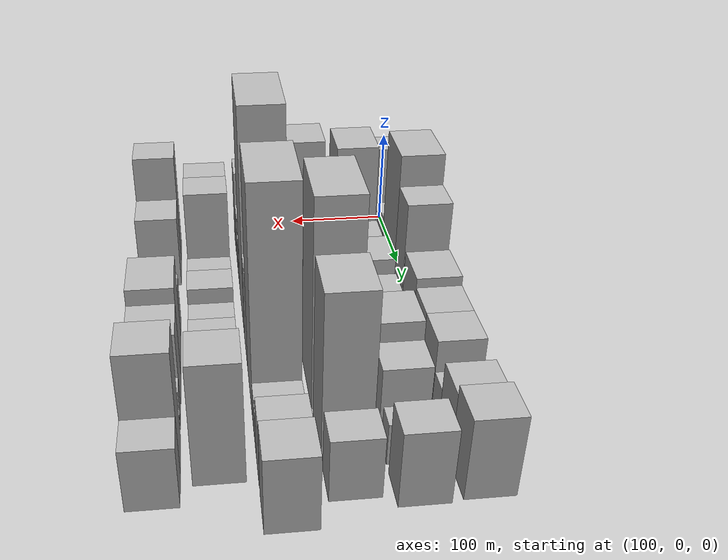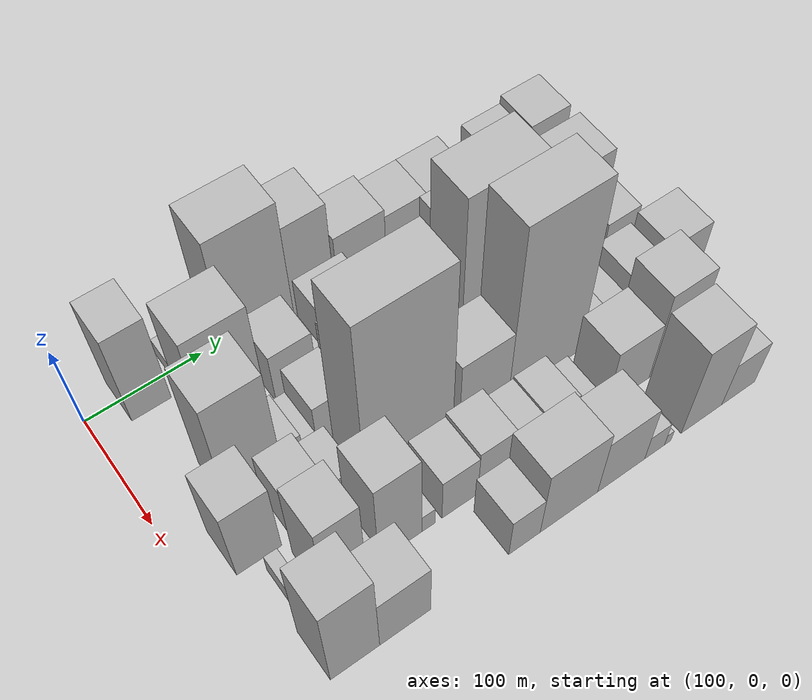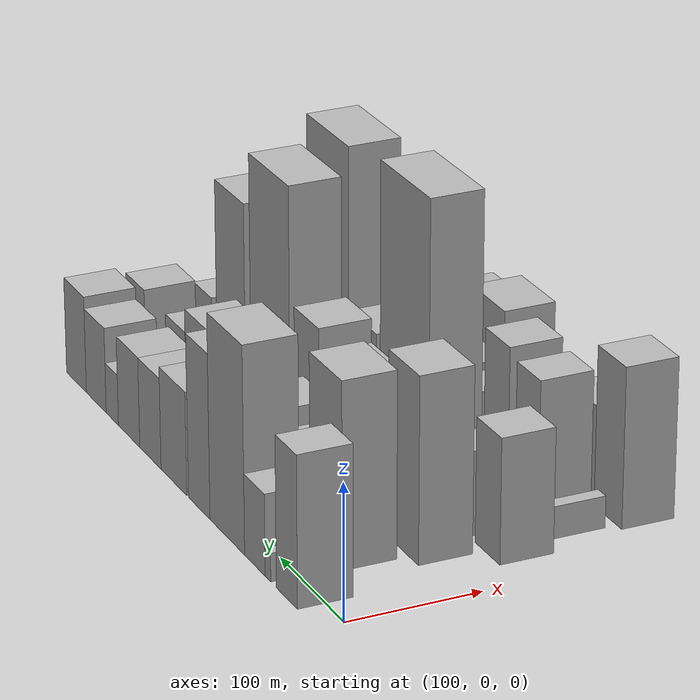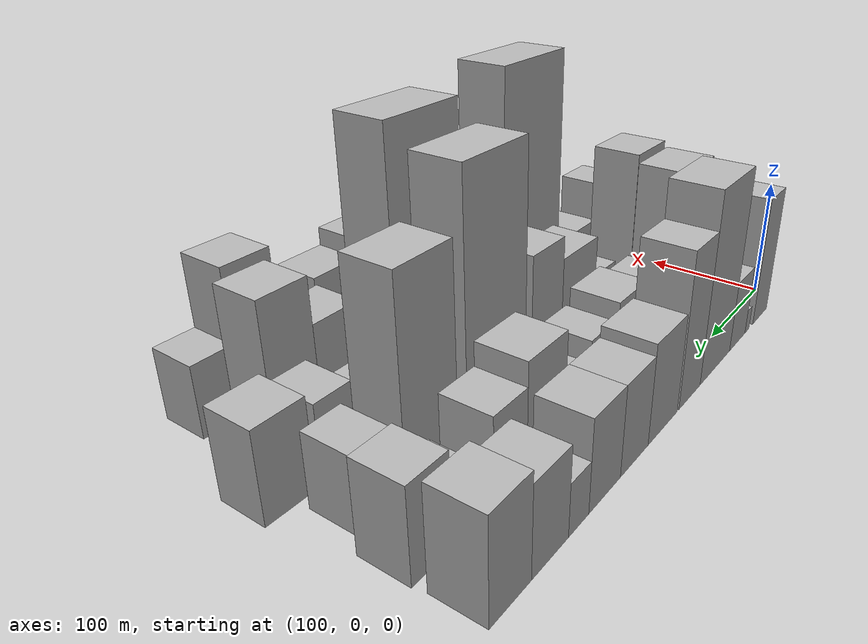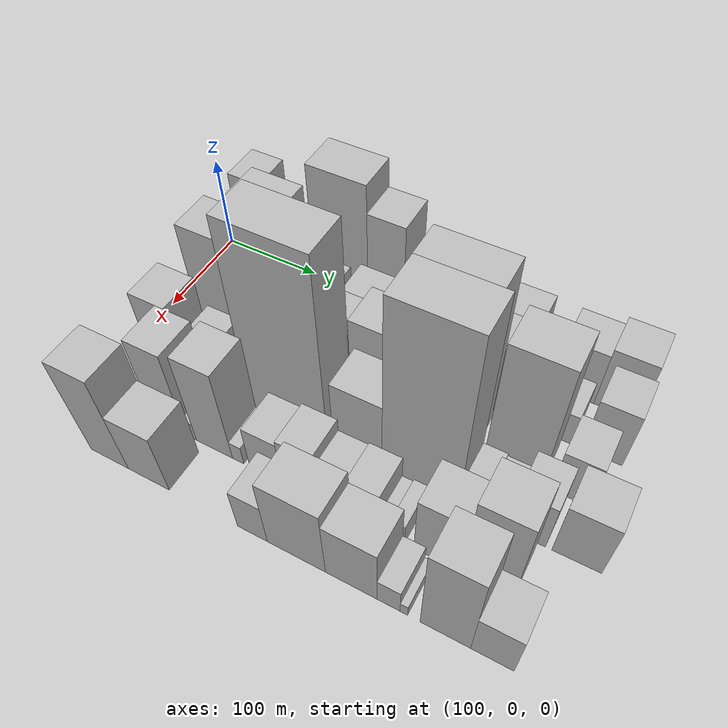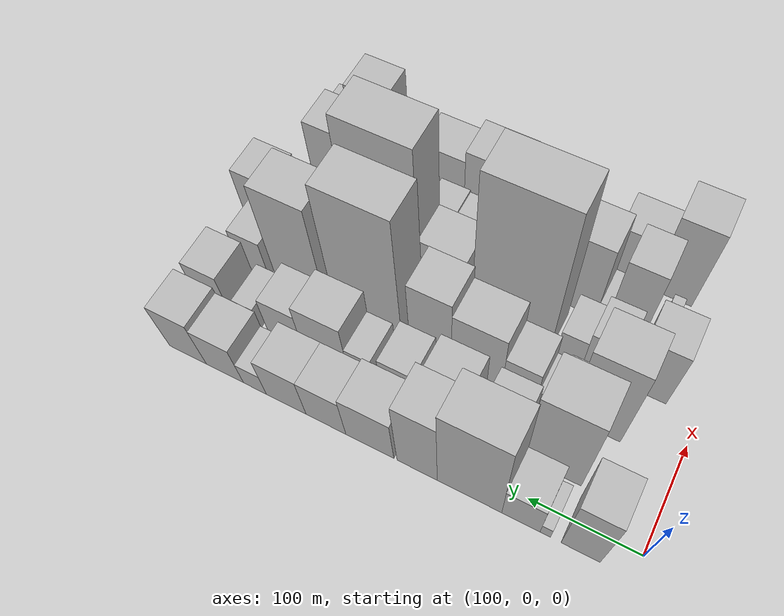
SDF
<sdf version="1.6">
 <world name="default">
  <model name="building_23">
   <static>1</static>
   <pose>100.0000 45.3945 0 0.000000 0.000000 0.000000</pose>
   <link name="link">
    <pose>0 0 55.50 0 0 0</pose>
    <collision name="collision"><geometry><box><size>40.0000 33.4134 111.0000</size></box></geometry></collision>
    <visual name="visual">
     <cast_shadows>0</cast_shadows>
     <geometry><box><size>40.0000 33.4134 111.0000</size></box></geometry>
     <material>
      <script>
       <uri>model://HANNAS_wall/materials/scripts</uri>
       <uri>model://HANNAS_wall/materials/textures</uri>
       <name>vrc/HANNAS_wall</name>
      </script>
     </material>
    </visual>
   </link>
  </model>
  <model name="building_24">
   <static>1</static>
   <pose>100.0000 75.6830 0 0.000000 0.000000 0.000000</pose>
   <link name="link">
    <pose>0 0 10.50 0 0 0</pose>
    <collision name="collision"><geometry><box><size>40.0000 9.1636 21.0000</size></box></geometry></collision>
    <visual name="visual">
     <cast_shadows>0</cast_shadows>
     <geometry><box><size>40.0000 9.1636 21.0000</size></box></geometry>
     <material>
      <script>
       <uri>model://HANNAS_wall/materials/scripts</uri>
       <uri>model://HANNAS_wall/materials/textures</uri>
       <name>vrc/HANNAS_wall</name>
      </script>
     </material>
    </visual>
   </link>
  </model>
  <model name="building_25">
   <static>1</static>
   <pose>100.0000 97.0771 0 0.000000 0.000000 0.000000</pose>
   <link name="link">
    <pose>0 0 30.00 0 0 0</pose>
    <collision name="collision"><geometry><box><size>40.0000 33.6245 60.0000</size></box></geometry></collision>
    <visual name="visual">
     <cast_shadows>0</cast_shadows>
     <geometry><box><size>40.0000 33.6245 60.0000</size></box></geometry>
     <material>
      <script>
       <uri>model://HANNAS_wall/materials/scripts</uri>
       <uri>model://HANNAS_wall/materials/textures</uri>
       <name>vrc/HANNAS_wall</name>
      </script>
     </material>
    </visual>
   </link>
  </model>
  <model name="building_26">
   <static>1</static>
   <pose>100.0000 142.9724 0 0.000000 0.000000 0.000000</pose>
   <link name="link">
    <pose>0 0 76.50 0 0 0</pose>
    <collision name="collision"><geometry><box><size>40.0000 58.1661 153.0000</size></box></geometry></collision>
    <visual name="visual">
     <cast_shadows>0</cast_shadows>
     <geometry><box><size>40.0000 58.1661 153.0000</size></box></geometry>
     <material>
      <script>
       <uri>model://HANNAS_wall/materials/scripts</uri>
       <uri>model://HANNAS_wall/materials/textures</uri>
       <name>vrc/HANNAS_wall</name>
      </script>
     </material>
    </visual>
   </link>
  </model>
  <model name="building_27">
   <static>1</static>
   <pose>100.0000 190.6876 0 0.000000 0.000000 0.000000</pose>
   <link name="link">
    <pose>0 0 61.50 0 0 0</pose>
    <collision name="collision"><geometry><box><size>40.0000 37.2642 123.0000</size></box></geometry></collision>
    <visual name="visual">
     <cast_shadows>0</cast_shadows>
     <geometry><box><size>40.0000 37.2642 123.0000</size></box></geometry>
     <material>
      <script>
       <uri>model://HANNAS_wall/materials/scripts</uri>
       <uri>model://HANNAS_wall/materials/textures</uri>
       <name>vrc/HANNAS_wall</name>
      </script>
     </material>
    </visual>
   </link>
  </model>
  <model name="building_28">
   <static>1</static>
   <pose>100.0000 235.1415 0 0.000000 0.000000 0.000000</pose>
   <link name="link">
    <pose>0 0 39.00 0 0 0</pose>
    <collision name="collision"><geometry><box><size>40.0000 45.6437 78.0000</size></box></geometry></collision>
    <visual name="visual">
     <cast_shadows>0</cast_shadows>
     <geometry><box><size>40.0000 45.6437 78.0000</size></box></geometry>
     <material>
      <script>
       <uri>model://HANNAS_wall/materials/scripts</uri>
       <uri>model://HANNAS_wall/materials/textures</uri>
       <name>vrc/HANNAS_wall</name>
      </script>
     </material>
    </visual>
   </link>
  </model>
  <model name="building_29">
   <static>1</static>
   <pose>100.0000 277.3512 0 0.000000 0.000000 0.000000</pose>
   <link name="link">
    <pose>0 0 34.50 0 0 0</pose>
    <collision name="collision"><geometry><box><size>40.0000 38.7757 69.0000</size></box></geometry></collision>
    <visual name="visual">
     <cast_shadows>0</cast_shadows>
     <geometry><box><size>40.0000 38.7757 69.0000</size></box></geometry>
     <material>
      <script>
       <uri>model://HANNAS_wall/materials/scripts</uri>
       <uri>model://HANNAS_wall/materials/textures</uri>
       <name>vrc/HANNAS_wall</name>
      </script>
     </material>
    </visual>
   </link>
  </model>
  <model name="building_30">
   <static>1</static>
   <pose>100.0000 316.5847 0 0.000000 0.000000 0.000000</pose>
   <link name="link">
    <pose>0 0 34.50 0 0 0</pose>
    <collision name="collision"><geometry><box><size>40.0000 39.6913 69.0000</size></box></geometry></collision>
    <visual name="visual">
     <cast_shadows>0</cast_shadows>
     <geometry><box><size>40.0000 39.6913 69.0000</size></box></geometry>
     <material>
      <script>
       <uri>model://HANNAS_wall/materials/scripts</uri>
       <uri>model://HANNAS_wall/materials/textures</uri>
       <name>vrc/HANNAS_wall</name>
      </script>
     </material>
    </visual>
   </link>
  </model>
  <model name="building_31">
   <static>1</static>
   <pose>100.0000 347.9838 0 0.000000 0.000000 0.000000</pose>
   <link name="link">
    <pose>0 0 19.50 0 0 0</pose>
    <collision name="collision"><geometry><box><size>40.0000 23.1069 39.0000</size></box></geometry></collision>
    <visual name="visual">
     <cast_shadows>0</cast_shadows>
     <geometry><box><size>40.0000 23.1069 39.0000</size></box></geometry>
     <material>
      <script>
       <uri>model://HANNAS_wall/materials/scripts</uri>
       <uri>model://HANNAS_wall/materials/textures</uri>
       <name>vrc/HANNAS_wall</name>
      </script>
     </material>
    </visual>
   </link>
  </model>
  <model name="building_32">
   <static>1</static>
   <pose>100.0000 378.6940 0 0.000000 0.000000 0.000000</pose>
   <link name="link">
    <pose>0 0 33.00 0 0 0</pose>
    <collision name="collision"><geometry><box><size>40.0000 38.3136 66.0000</size></box></geometry></collision>
    <visual name="visual">
     <cast_shadows>0</cast_shadows>
     <geometry><box><size>40.0000 38.3136 66.0000</size></box></geometry>
     <material>
      <script>
       <uri>model://HANNAS_wall/materials/scripts</uri>
       <uri>model://HANNAS_wall/materials/textures</uri>
       <name>vrc/HANNAS_wall</name>
      </script>
     </material>
    </visual>
   </link>
  </model>
  <model name="building_33">
   <static>1</static>
   <pose>100.0000 417.2461 0 0.000000 0.000000 0.000000</pose>
   <link name="link">
    <pose>0 0 37.50 0 0 0</pose>
    <collision name="collision"><geometry><box><size>40.0000 38.7907 75.0000</size></box></geometry></collision>
    <visual name="visual">
     <cast_shadows>0</cast_shadows>
     <geometry><box><size>40.0000 38.7907 75.0000</size></box></geometry>
     <material>
      <script>
       <uri>model://HANNAS_wall/materials/scripts</uri>
       <uri>model://HANNAS_wall/materials/textures</uri>
       <name>vrc/HANNAS_wall</name>
      </script>
     </material>
    </visual>
   </link>
  </model>
  <model name="building_63">
   <static>1</static>
   <pose>149.0000 90.9288 0 0.000000 0.000000 0.000000</pose>
   <link name="link">
    <pose>0 0 69.00 0 0 0</pose>
    <collision name="collision"><geometry><box><size>40.0000 50.9010 138.0000</size></box></geometry></collision>
    <visual name="visual">
     <cast_shadows>0</cast_shadows>
     <geometry><box><size>40.0000 50.9010 138.0000</size></box></geometry>
     <material>
      <script>
       <uri>model://HANNAS_wall/materials/scripts</uri>
       <uri>model://HANNAS_wall/materials/textures</uri>
       <name>vrc/HANNAS_wall</name>
      </script>
     </material>
    </visual>
   </link>
  </model>
  <model name="building_64">
   <static>1</static>
   <pose>149.0000 141.6008 0 0.000000 0.000000 0.000000</pose>
   <link name="link">
    <pose>0 0 31.50 0 0 0</pose>
    <collision name="collision"><geometry><box><size>40.0000 36.4432 63.0000</size></box></geometry></collision>
    <visual name="visual">
     <cast_shadows>0</cast_shadows>
     <geometry><box><size>40.0000 36.4432 63.0000</size></box></geometry>
     <material>
      <script>
       <uri>model://HANNAS_wall/materials/scripts</uri>
       <uri>model://HANNAS_wall/materials/textures</uri>
       <name>vrc/HANNAS_wall</name>
      </script>
     </material>
    </visual>
   </link>
  </model>
  <model name="building_65">
   <static>1</static>
   <pose>149.0000 165.2321 0 0.000000 0.000000 0.000000</pose>
   <link name="link">
    <pose>0 0 12.00 0 0 0</pose>
    <collision name="collision"><geometry><box><size>40.0000 10.8193 24.0000</size></box></geometry></collision>
    <visual name="visual">
     <cast_shadows>0</cast_shadows>
     <geometry><box><size>40.0000 10.8193 24.0000</size></box></geometry>
     <material>
      <script>
       <uri>model://HANNAS_wall/materials/scripts</uri>
       <uri>model://HANNAS_wall/materials/textures</uri>
       <name>vrc/HANNAS_wall</name>
      </script>
     </material>
    </visual>
   </link>
  </model>
  <model name="building_66">
   <static>1</static>
   <pose>149.0000 192.1808 0 0.000000 0.000000 0.000000</pose>
   <link name="link">
    <pose>0 0 36.00 0 0 0</pose>
    <collision name="collision"><geometry><box><size>40.0000 43.0781 72.0000</size></box></geometry></collision>
    <visual name="visual">
     <cast_shadows>0</cast_shadows>
     <geometry><box><size>40.0000 43.0781 72.0000</size></box></geometry>
     <material>
      <script>
       <uri>model://HANNAS_wall/materials/scripts</uri>
       <uri>model://HANNAS_wall/materials/textures</uri>
       <name>vrc/HANNAS_wall</name>
      </script>
     </material>
    </visual>
   </link>
  </model>
  <model name="building_67">
   <static>1</static>
   <pose>149.0000 235.2447 0 0.000000 0.000000 0.000000</pose>
   <link name="link">
    <pose>0 0 30.00 0 0 0</pose>
    <collision name="collision"><geometry><box><size>40.0000 33.0497 60.0000</size></box></geometry></collision>
    <visual name="visual">
     <cast_shadows>0</cast_shadows>
     <geometry><box><size>40.0000 33.0497 60.0000</size></box></geometry>
     <material>
      <script>
       <uri>model://HANNAS_wall/materials/scripts</uri>
       <uri>model://HANNAS_wall/materials/textures</uri>
       <name>vrc/HANNAS_wall</name>
      </script>
     </material>
    </visual>
   </link>
  </model>
  <model name="building_68">
   <static>1</static>
   <pose>149.0000 255.4464 0 0.000000 0.000000 0.000000</pose>
   <link name="link">
    <pose>0 0 9.00 0 0 0</pose>
    <collision name="collision"><geometry><box><size>40.0000 7.3537 18.0000</size></box></geometry></collision>
    <visual name="visual">
     <cast_shadows>0</cast_shadows>
     <geometry><box><size>40.0000 7.3537 18.0000</size></box></geometry>
     <material>
      <script>
       <uri>model://HANNAS_wall/materials/scripts</uri>
       <uri>model://HANNAS_wall/materials/textures</uri>
       <name>vrc/HANNAS_wall</name>
      </script>
     </material>
    </visual>
   </link>
  </model>
  <model name="building_69">
   <static>1</static>
   <pose>149.0000 271.4099 0 0.000000 0.000000 0.000000</pose>
   <link name="link">
    <pose>0 0 24.00 0 0 0</pose>
    <collision name="collision"><geometry><box><size>40.0000 24.5733 48.0000</size></box></geometry></collision>
    <visual name="visual">
     <cast_shadows>0</cast_shadows>
     <geometry><box><size>40.0000 24.5733 48.0000</size></box></geometry>
     <material>
      <script>
       <uri>model://HANNAS_wall/materials/scripts</uri>
       <uri>model://HANNAS_wall/materials/textures</uri>
       <name>vrc/HANNAS_wall</name>
      </script>
     </material>
    </visual>
   </link>
  </model>
  <model name="building_70">
   <static>1</static>
   <pose>149.0000 306.1748 0 0.000000 0.000000 0.000000</pose>
   <link name="link">
    <pose>0 0 42.00 0 0 0</pose>
    <collision name="collision"><geometry><box><size>40.0000 44.9565 84.0000</size></box></geometry></collision>
    <visual name="visual">
     <cast_shadows>0</cast_shadows>
     <geometry><box><size>40.0000 44.9565 84.0000</size></box></geometry>
     <material>
      <script>
       <uri>model://HANNAS_wall/materials/scripts</uri>
       <uri>model://HANNAS_wall/materials/textures</uri>
       <name>vrc/HANNAS_wall</name>
      </script>
     </material>
    </visual>
   </link>
  </model>
  <model name="building_71">
   <static>1</static>
   <pose>149.0000 346.3911 0 0.000000 0.000000 0.000000</pose>
   <link name="link">
    <pose>0 0 33.00 0 0 0</pose>
    <collision name="collision"><geometry><box><size>40.0000 35.4761 66.0000</size></box></geometry></collision>
    <visual name="visual">
     <cast_shadows>0</cast_shadows>
     <geometry><box><size>40.0000 35.4761 66.0000</size></box></geometry>
     <material>
      <script>
       <uri>model://HANNAS_wall/materials/scripts</uri>
       <uri>model://HANNAS_wall/materials/textures</uri>
       <name>vrc/HANNAS_wall</name>
      </script>
     </material>
    </visual>
   </link>
  </model>
  <model name="building_72">
   <static>1</static>
   <pose>149.0000 384.5979 0 0.000000 0.000000 0.000000</pose>
   <link name="link">
    <pose>0 0 19.50 0 0 0</pose>
    <collision name="collision"><geometry><box><size>40.0000 20.9376 39.0000</size></box></geometry></collision>
    <visual name="visual">
     <cast_shadows>0</cast_shadows>
     <geometry><box><size>40.0000 20.9376 39.0000</size></box></geometry>
     <material>
      <script>
       <uri>model://HANNAS_wall/materials/scripts</uri>
       <uri>model://HANNAS_wall/materials/textures</uri>
       <name>vrc/HANNAS_wall</name>
      </script>
     </material>
    </visual>
   </link>
  </model>
  <model name="building_73">
   <static>1</static>
   <pose>149.0000 421.4805 0 0.000000 0.000000 0.000000</pose>
   <link name="link">
    <pose>0 0 34.50 0 0 0</pose>
    <collision name="collision"><geometry><box><size>40.0000 34.8275 69.0000</size></box></geometry></collision>
    <visual name="visual">
     <cast_shadows>0</cast_shadows>
     <geometry><box><size>40.0000 34.8275 69.0000</size></box></geometry>
     <material>
      <script>
       <uri>model://HANNAS_wall/materials/scripts</uri>
       <uri>model://HANNAS_wall/materials/textures</uri>
       <name>vrc/HANNAS_wall</name>
      </script>
     </material>
    </visual>
   </link>
  </model>
  <model name="building_104">
   <static>1</static>
   <pose>198.0000 74.3342 0 0.000000 0.000000 0.000000</pose>
   <link name="link">
    <pose>0 0 69.00 0 0 0</pose>
    <collision name="collision"><geometry><box><size>40.0000 46.7416 138.0000</size></box></geometry></collision>
    <visual name="visual">
     <cast_shadows>0</cast_shadows>
     <geometry><box><size>40.0000 46.7416 138.0000</size></box></geometry>
     <material>
      <script>
       <uri>model://HANNAS_wall/materials/scripts</uri>
       <uri>model://HANNAS_wall/materials/textures</uri>
       <name>vrc/HANNAS_wall</name>
      </script>
     </material>
    </visual>
   </link>
  </model>
  <model name="building_105">
   <static>1</static>
   <pose>198.0000 106.6866 0 0.000000 0.000000 0.000000</pose>
   <link name="link">
    <pose>0 0 16.50 0 0 0</pose>
    <collision name="collision"><geometry><box><size>40.0000 17.9631 33.0000</size></box></geometry></collision>
    <visual name="visual">
     <cast_shadows>0</cast_shadows>
     <geometry><box><size>40.0000 17.9631 33.0000</size></box></geometry>
     <material>
      <script>
       <uri>model://HANNAS_wall/materials/scripts</uri>
       <uri>model://HANNAS_wall/materials/textures</uri>
       <name>vrc/HANNAS_wall</name>
      </script>
     </material>
    </visual>
   </link>
  </model>
  <model name="building_106">
   <static>1</static>
   <pose>198.0000 121.6123 0 0.000000 0.000000 0.000000</pose>
   <link name="link">
    <pose>0 0 12.00 0 0 0</pose>
    <collision name="collision"><geometry><box><size>40.0000 11.8884 24.0000</size></box></geometry></collision>
    <visual name="visual">
     <cast_shadows>0</cast_shadows>
     <geometry><box><size>40.0000 11.8884 24.0000</size></box></geometry>
     <material>
      <script>
       <uri>model://HANNAS_wall/materials/scripts</uri>
       <uri>model://HANNAS_wall/materials/textures</uri>
       <name>vrc/HANNAS_wall</name>
      </script>
     </material>
    </visual>
   </link>
  </model>
  <model name="building_107">
   <static>1</static>
   <pose>198.0000 143.6824 0 0.000000 0.000000 0.000000</pose>
   <link name="link">
    <pose>0 0 28.50 0 0 0</pose>
    <collision name="collision"><geometry><box><size>40.0000 32.2518 57.0000</size></box></geometry></collision>
    <visual name="visual">
     <cast_shadows>0</cast_shadows>
     <geometry><box><size>40.0000 32.2518 57.0000</size></box></geometry>
     <material>
      <script>
       <uri>model://HANNAS_wall/materials/scripts</uri>
       <uri>model://HANNAS_wall/materials/textures</uri>
       <name>vrc/HANNAS_wall</name>
      </script>
     </material>
    </visual>
   </link>
  </model>
  <model name="building_108">
   <static>1</static>
   <pose>198.0000 184.2642 0 0.000000 0.000000 0.000000</pose>
   <link name="link">
    <pose>0 0 45.00 0 0 0</pose>
    <collision name="collision"><geometry><box><size>40.0000 48.9118 90.0000</size></box></geometry></collision>
    <visual name="visual">
     <cast_shadows>0</cast_shadows>
     <geometry><box><size>40.0000 48.9118 90.0000</size></box></geometry>
     <material>
      <script>
       <uri>model://HANNAS_wall/materials/scripts</uri>
       <uri>model://HANNAS_wall/materials/textures</uri>
       <name>vrc/HANNAS_wall</name>
      </script>
     </material>
    </visual>
   </link>
  </model>
  <model name="building_109">
   <static>1</static>
   <pose>198.0000 229.1440 0 0.000000 0.000000 0.000000</pose>
   <link name="link">
    <pose>0 0 54.00 0 0 0</pose>
    <collision name="collision"><geometry><box><size>40.0000 40.8479 108.0000</size></box></geometry></collision>
    <visual name="visual">
     <cast_shadows>0</cast_shadows>
     <geometry><box><size>40.0000 40.8479 108.0000</size></box></geometry>
     <material>
      <script>
       <uri>model://HANNAS_wall/materials/scripts</uri>
       <uri>model://HANNAS_wall/materials/textures</uri>
       <name>vrc/HANNAS_wall</name>
      </script>
     </material>
    </visual>
   </link>
  </model>
  <model name="building_110">
   <static>1</static>
   <pose>198.0000 291.4031 0 0.000000 0.000000 0.000000</pose>
   <link name="link">
    <pose>0 0 97.50 0 0 0</pose>
    <collision name="collision"><geometry><box><size>40.0000 67.6703 195.0000</size></box></geometry></collision>
    <visual name="visual">
     <cast_shadows>0</cast_shadows>
     <geometry><box><size>40.0000 67.6703 195.0000</size></box></geometry>
     <material>
      <script>
       <uri>model://HANNAS_wall/materials/scripts</uri>
       <uri>model://HANNAS_wall/materials/textures</uri>
       <name>vrc/HANNAS_wall</name>
      </script>
     </material>
    </visual>
   </link>
  </model>
  <model name="building_111">
   <static>1</static>
   <pose>198.0000 360.8917 0 0.000000 0.000000 0.000000</pose>
   <link name="link">
    <pose>0 0 76.50 0 0 0</pose>
    <collision name="collision"><geometry><box><size>40.0000 51.3067 153.0000</size></box></geometry></collision>
    <visual name="visual">
     <cast_shadows>0</cast_shadows>
     <geometry><box><size>40.0000 51.3067 153.0000</size></box></geometry>
     <material>
      <script>
       <uri>model://HANNAS_wall/materials/scripts</uri>
       <uri>model://HANNAS_wall/materials/textures</uri>
       <name>vrc/HANNAS_wall</name>
      </script>
     </material>
    </visual>
   </link>
  </model>
  <model name="building_112">
   <static>1</static>
   <pose>198.0000 411.8621 0 0.000000 0.000000 0.000000</pose>
   <link name="link">
    <pose>0 0 28.50 0 0 0</pose>
    <collision name="collision"><geometry><box><size>40.0000 32.6341 57.0000</size></box></geometry></collision>
    <visual name="visual">
     <cast_shadows>0</cast_shadows>
     <geometry><box><size>40.0000 32.6341 57.0000</size></box></geometry>
     <material>
      <script>
       <uri>model://HANNAS_wall/materials/scripts</uri>
       <uri>model://HANNAS_wall/materials/textures</uri>
       <name>vrc/HANNAS_wall</name>
      </script>
     </material>
    </visual>
   </link>
  </model>
  <model name="building_146">
   <static>1</static>
   <pose>247.0000 47.0370 0 0.000000 0.000000 0.000000</pose>
   <link name="link">
    <pose>0 0 46.50 0 0 0</pose>
    <collision name="collision"><geometry><box><size>40.0000 36.7034 93.0000</size></box></geometry></collision>
    <visual name="visual">
     <cast_shadows>0</cast_shadows>
     <geometry><box><size>40.0000 36.7034 93.0000</size></box></geometry>
     <material>
      <script>
       <uri>model://HANNAS_wall/materials/scripts</uri>
       <uri>model://HANNAS_wall/materials/textures</uri>
       <name>vrc/HANNAS_wall</name>
      </script>
     </material>
    </visual>
   </link>
  </model>
  <model name="building_147">
   <static>1</static>
   <pose>247.0000 90.1556 0 0.000000 0.000000 0.000000</pose>
   <link name="link">
    <pose>0 0 31.50 0 0 0</pose>
    <collision name="collision"><geometry><box><size>40.0000 31.5337 63.0000</size></box></geometry></collision>
    <visual name="visual">
     <cast_shadows>0</cast_shadows>
     <geometry><box><size>40.0000 31.5337 63.0000</size></box></geometry>
     <material>
      <script>
       <uri>model://HANNAS_wall/materials/scripts</uri>
       <uri>model://HANNAS_wall/materials/textures</uri>
       <name>vrc/HANNAS_wall</name>
      </script>
     </material>
    </visual>
   </link>
  </model>
  <model name="building_148">
   <static>1</static>
   <pose>247.0000 118.2074 0 0.000000 0.000000 0.000000</pose>
   <link name="link">
    <pose>0 0 22.50 0 0 0</pose>
    <collision name="collision"><geometry><box><size>40.0000 24.5701 45.0000</size></box></geometry></collision>
    <visual name="visual">
     <cast_shadows>0</cast_shadows>
     <geometry><box><size>40.0000 24.5701 45.0000</size></box></geometry>
     <material>
      <script>
       <uri>model://HANNAS_wall/materials/scripts</uri>
       <uri>model://HANNAS_wall/materials/textures</uri>
       <name>vrc/HANNAS_wall</name>
      </script>
     </material>
    </visual>
   </link>
  </model>
  <model name="building_149">
   <static>1</static>
   <pose>247.0000 175.0827 0 0.000000 0.000000 0.000000</pose>
   <link name="link">
    <pose>0 0 111.00 0 0 0</pose>
    <collision name="collision"><geometry><box><size>40.0000 77.1804 222.0000</size></box></geometry></collision>
    <visual name="visual">
     <cast_shadows>0</cast_shadows>
     <geometry><box><size>40.0000 77.1804 222.0000</size></box></geometry>
     <material>
      <script>
       <uri>model://HANNAS_wall/materials/scripts</uri>
       <uri>model://HANNAS_wall/materials/textures</uri>
       <name>vrc/HANNAS_wall</name>
      </script>
     </material>
    </visual>
   </link>
  </model>
  <model name="building_150">
   <static>1</static>
   <pose>247.0000 242.5598 0 0.000000 0.000000 0.000000</pose>
   <link name="link">
    <pose>0 0 45.00 0 0 0</pose>
    <collision name="collision"><geometry><box><size>40.0000 45.7739 90.0000</size></box></geometry></collision>
    <visual name="visual">
     <cast_shadows>0</cast_shadows>
     <geometry><box><size>40.0000 45.7739 90.0000</size></box></geometry>
     <material>
      <script>
       <uri>model://HANNAS_wall/materials/scripts</uri>
       <uri>model://HANNAS_wall/materials/textures</uri>
       <name>vrc/HANNAS_wall</name>
      </script>
     </material>
    </visual>
   </link>
  </model>
  <model name="building_151">
   <static>1</static>
   <pose>247.0000 300.2194 0 0.000000 0.000000 0.000000</pose>
   <link name="link">
    <pose>0 0 106.50 0 0 0</pose>
    <collision name="collision"><geometry><box><size>40.0000 69.5453 213.0000</size></box></geometry></collision>
    <visual name="visual">
     <cast_shadows>0</cast_shadows>
     <geometry><box><size>40.0000 69.5453 213.0000</size></box></geometry>
     <material>
      <script>
       <uri>model://HANNAS_wall/materials/scripts</uri>
       <uri>model://HANNAS_wall/materials/textures</uri>
       <name>vrc/HANNAS_wall</name>
      </script>
     </material>
    </visual>
   </link>
  </model>
  <model name="building_152">
   <static>1</static>
   <pose>247.0000 345.5301 0 0.000000 0.000000 0.000000</pose>
   <link name="link">
    <pose>0 0 19.50 0 0 0</pose>
    <collision name="collision"><geometry><box><size>40.0000 21.0761 39.0000</size></box></geometry></collision>
    <visual name="visual">
     <cast_shadows>0</cast_shadows>
     <geometry><box><size>40.0000 21.0761 39.0000</size></box></geometry>
     <material>
      <script>
       <uri>model://HANNAS_wall/materials/scripts</uri>
       <uri>model://HANNAS_wall/materials/textures</uri>
       <name>vrc/HANNAS_wall</name>
      </script>
     </material>
    </visual>
   </link>
  </model>
  <model name="building_153">
   <static>1</static>
   <pose>247.0000 366.7597 0 0.000000 0.000000 0.000000</pose>
   <link name="link">
    <pose>0 0 18.00 0 0 0</pose>
    <collision name="collision"><geometry><box><size>40.0000 21.3830 36.0000</size></box></geometry></collision>
    <visual name="visual">
     <cast_shadows>0</cast_shadows>
     <geometry><box><size>40.0000 21.3830 36.0000</size></box></geometry>
     <material>
      <script>
       <uri>model://HANNAS_wall/materials/scripts</uri>
       <uri>model://HANNAS_wall/materials/textures</uri>
       <name>vrc/HANNAS_wall</name>
      </script>
     </material>
    </visual>
   </link>
  </model>
  <model name="building_154">
   <static>1</static>
   <pose>247.0000 393.1928 0 0.000000 0.000000 0.000000</pose>
   <link name="link">
    <pose>0 0 30.00 0 0 0</pose>
    <collision name="collision"><geometry><box><size>40.0000 31.4834 60.0000</size></box></geometry></collision>
    <visual name="visual">
     <cast_shadows>0</cast_shadows>
     <geometry><box><size>40.0000 31.4834 60.0000</size></box></geometry>
     <material>
      <script>
       <uri>model://HANNAS_wall/materials/scripts</uri>
       <uri>model://HANNAS_wall/materials/textures</uri>
       <name>vrc/HANNAS_wall</name>
      </script>
     </material>
    </visual>
   </link>
  </model>
  <model name="building_155">
   <static>1</static>
   <pose>247.0000 433.9646 0 0.000000 0.000000 0.000000</pose>
   <link name="link">
    <pose>0 0 34.50 0 0 0</pose>
    <collision name="collision"><geometry><box><size>40.0000 40.0601 69.0000</size></box></geometry></collision>
    <visual name="visual">
     <cast_shadows>0</cast_shadows>
     <geometry><box><size>40.0000 40.0601 69.0000</size></box></geometry>
     <material>
      <script>
       <uri>model://HANNAS_wall/materials/scripts</uri>
       <uri>model://HANNAS_wall/materials/textures</uri>
       <name>vrc/HANNAS_wall</name>
      </script>
     </material>
    </visual>
   </link>
  </model>
  <model name="building_188">
   <static>1</static>
   <pose>296.0000 53.0064 0 0.000000 0.000000 0.000000</pose>
   <link name="link">
    <pose>0 0 12.00 0 0 0</pose>
    <collision name="collision"><geometry><box><size>40.0000 10.9229 24.0000</size></box></geometry></collision>
    <visual name="visual">
     <cast_shadows>0</cast_shadows>
     <geometry><box><size>40.0000 10.9229 24.0000</size></box></geometry>
     <material>
      <script>
       <uri>model://HANNAS_wall/materials/scripts</uri>
       <uri>model://HANNAS_wall/materials/textures</uri>
       <name>vrc/HANNAS_wall</name>
      </script>
     </material>
    </visual>
   </link>
  </model>
  <model name="building_189">
   <static>1</static>
   <pose>296.0000 85.6692 0 0.000000 0.000000 0.000000</pose>
   <link name="link">
    <pose>0 0 54.00 0 0 0</pose>
    <collision name="collision"><geometry><box><size>40.0000 34.4027 108.0000</size></box></geometry></collision>
    <visual name="visual">
     <cast_shadows>0</cast_shadows>
     <geometry><box><size>40.0000 34.4027 108.0000</size></box></geometry>
     <material>
      <script>
       <uri>model://HANNAS_wall/materials/scripts</uri>
       <uri>model://HANNAS_wall/materials/textures</uri>
       <name>vrc/HANNAS_wall</name>
      </script>
     </material>
    </visual>
   </link>
  </model>
  <model name="building_190">
   <static>1</static>
   <pose>296.0000 108.1696 0 0.000000 0.000000 0.000000</pose>
   <link name="link">
    <pose>0 0 12.00 0 0 0</pose>
    <collision name="collision"><geometry><box><size>40.0000 10.5983 24.0000</size></box></geometry></collision>
    <visual name="visual">
     <cast_shadows>0</cast_shadows>
     <geometry><box><size>40.0000 10.5983 24.0000</size></box></geometry>
     <material>
      <script>
       <uri>model://HANNAS_wall/materials/scripts</uri>
       <uri>model://HANNAS_wall/materials/textures</uri>
       <name>vrc/HANNAS_wall</name>
      </script>
     </material>
    </visual>
   </link>
  </model>
  <model name="building_191">
   <static>1</static>
   <pose>296.0000 131.9179 0 0.000000 0.000000 0.000000</pose>
   <link name="link">
    <pose>0 0 57.00 0 0 0</pose>
    <collision name="collision"><geometry><box><size>40.0000 36.8981 114.0000</size></box></geometry></collision>
    <visual name="visual">
     <cast_shadows>0</cast_shadows>
     <geometry><box><size>40.0000 36.8981 114.0000</size></box></geometry>
     <material>
      <script>
       <uri>model://HANNAS_wall/materials/scripts</uri>
       <uri>model://HANNAS_wall/materials/textures</uri>
       <name>vrc/HANNAS_wall</name>
      </script>
     </material>
    </visual>
   </link>
  </model>
  <model name="building_192">
   <static>1</static>
   <pose>296.0000 156.0854 0 0.000000 0.000000 0.000000</pose>
   <link name="link">
    <pose>0 0 12.00 0 0 0</pose>
    <collision name="collision"><geometry><box><size>40.0000 11.4370 24.0000</size></box></geometry></collision>
    <visual name="visual">
     <cast_shadows>0</cast_shadows>
     <geometry><box><size>40.0000 11.4370 24.0000</size></box></geometry>
     <material>
      <script>
       <uri>model://HANNAS_wall/materials/scripts</uri>
       <uri>model://HANNAS_wall/materials/textures</uri>
       <name>vrc/HANNAS_wall</name>
      </script>
     </material>
    </visual>
   </link>
  </model>
  <model name="building_193">
   <static>1</static>
   <pose>296.0000 183.6130 0 0.000000 0.000000 0.000000</pose>
   <link name="link">
    <pose>0 0 28.50 0 0 0</pose>
    <collision name="collision"><geometry><box><size>40.0000 31.6182 57.0000</size></box></geometry></collision>
    <visual name="visual">
     <cast_shadows>0</cast_shadows>
     <geometry><box><size>40.0000 31.6182 57.0000</size></box></geometry>
     <material>
      <script>
       <uri>model://HANNAS_wall/materials/scripts</uri>
       <uri>model://HANNAS_wall/materials/textures</uri>
       <name>vrc/HANNAS_wall</name>
      </script>
     </material>
    </visual>
   </link>
  </model>
  <model name="building_194">
   <static>1</static>
   <pose>296.0000 215.3752 0 0.000000 0.000000 0.000000</pose>
   <link name="link">
    <pose>0 0 31.50 0 0 0</pose>
    <collision name="collision"><geometry><box><size>40.0000 31.9062 63.0000</size></box></geometry></collision>
    <visual name="visual">
     <cast_shadows>0</cast_shadows>
     <geometry><box><size>40.0000 31.9062 63.0000</size></box></geometry>
     <material>
      <script>
       <uri>model://HANNAS_wall/materials/scripts</uri>
       <uri>model://HANNAS_wall/materials/textures</uri>
       <name>vrc/HANNAS_wall</name>
      </script>
     </material>
    </visual>
   </link>
  </model>
  <model name="building_195">
   <static>1</static>
   <pose>296.0000 245.2580 0 0.000000 0.000000 0.000000</pose>
   <link name="link">
    <pose>0 0 24.00 0 0 0</pose>
    <collision name="collision"><geometry><box><size>40.0000 27.8594 48.0000</size></box></geometry></collision>
    <visual name="visual">
     <cast_shadows>0</cast_shadows>
     <geometry><box><size>40.0000 27.8594 48.0000</size></box></geometry>
     <material>
      <script>
       <uri>model://HANNAS_wall/materials/scripts</uri>
       <uri>model://HANNAS_wall/materials/textures</uri>
       <name>vrc/HANNAS_wall</name>
      </script>
     </material>
    </visual>
   </link>
  </model>
  <model name="building_196">
   <static>1</static>
   <pose>296.0000 273.7939 0 0.000000 0.000000 0.000000</pose>
   <link name="link">
    <pose>0 0 25.50 0 0 0</pose>
    <collision name="collision"><geometry><box><size>40.0000 29.2124 51.0000</size></box></geometry></collision>
    <visual name="visual">
     <cast_shadows>0</cast_shadows>
     <geometry><box><size>40.0000 29.2124 51.0000</size></box></geometry>
     <material>
      <script>
       <uri>model://HANNAS_wall/materials/scripts</uri>
       <uri>model://HANNAS_wall/materials/textures</uri>
       <name>vrc/HANNAS_wall</name>
      </script>
     </material>
    </visual>
   </link>
  </model>
  <model name="building_197">
   <static>1</static>
   <pose>296.0000 293.5366 0 0.000000 0.000000 0.000000</pose>
   <link name="link">
    <pose>0 0 12.00 0 0 0</pose>
    <collision name="collision"><geometry><box><size>40.0000 10.2730 24.0000</size></box></geometry></collision>
    <visual name="visual">
     <cast_shadows>0</cast_shadows>
     <geometry><box><size>40.0000 10.2730 24.0000</size></box></geometry>
     <material>
      <script>
       <uri>model://HANNAS_wall/materials/scripts</uri>
       <uri>model://HANNAS_wall/materials/textures</uri>
       <name>vrc/HANNAS_wall</name>
      </script>
     </material>
    </visual>
   </link>
  </model>
  <model name="building_198">
   <static>1</static>
   <pose>296.0000 305.1002 0 0.000000 0.000000 0.000000</pose>
   <link name="link">
    <pose>0 0 13.50 0 0 0</pose>
    <collision name="collision"><geometry><box><size>40.0000 12.8542 27.0000</size></box></geometry></collision>
    <visual name="visual">
     <cast_shadows>0</cast_shadows>
     <geometry><box><size>40.0000 12.8542 27.0000</size></box></geometry>
     <material>
      <script>
       <uri>model://HANNAS_wall/materials/scripts</uri>
       <uri>model://HANNAS_wall/materials/textures</uri>
       <name>vrc/HANNAS_wall</name>
      </script>
     </material>
    </visual>
   </link>
  </model>
  <model name="building_199">
   <static>1</static>
   <pose>296.0000 340.3439 0 0.000000 0.000000 0.000000</pose>
   <link name="link">
    <pose>0 0 37.50 0 0 0</pose>
    <collision name="collision"><geometry><box><size>40.0000 41.6331 75.0000</size></box></geometry></collision>
    <visual name="visual">
     <cast_shadows>0</cast_shadows>
     <geometry><box><size>40.0000 41.6331 75.0000</size></box></geometry>
     <material>
      <script>
       <uri>model://HANNAS_wall/materials/scripts</uri>
       <uri>model://HANNAS_wall/materials/textures</uri>
       <name>vrc/HANNAS_wall</name>
      </script>
     </material>
    </visual>
   </link>
  </model>
  <model name="building_200">
   <static>1</static>
   <pose>296.0000 381.8081 0 0.000000 0.000000 0.000000</pose>
   <link name="link">
    <pose>0 0 55.50 0 0 0</pose>
    <collision name="collision"><geometry><box><size>40.0000 41.2954 111.0000</size></box></geometry></collision>
    <visual name="visual">
     <cast_shadows>0</cast_shadows>
     <geometry><box><size>40.0000 41.2954 111.0000</size></box></geometry>
     <material>
      <script>
       <uri>model://HANNAS_wall/materials/scripts</uri>
       <uri>model://HANNAS_wall/materials/textures</uri>
       <name>vrc/HANNAS_wall</name>
      </script>
     </material>
    </visual>
   </link>
  </model>
  <model name="building_232">
   <static>1</static>
   <pose>345.0000 60.4011 0 0.000000 0.000000 0.000000</pose>
   <link name="link">
    <pose>0 0 60.00 0 0 0</pose>
    <collision name="collision"><geometry><box><size>40.0000 39.5638 120.0000</size></box></geometry></collision>
    <visual name="visual">
     <cast_shadows>0</cast_shadows>
     <geometry><box><size>40.0000 39.5638 120.0000</size></box></geometry>
     <material>
      <script>
       <uri>model://HANNAS_wall/materials/scripts</uri>
       <uri>model://HANNAS_wall/materials/textures</uri>
       <name>vrc/HANNAS_wall</name>
      </script>
     </material>
    </visual>
   </link>
  </model>
  <model name="building_233">
   <static>1</static>
   <pose>345.0000 101.2381 0 0.000000 0.000000 0.000000</pose>
   <link name="link">
    <pose>0 0 37.50 0 0 0</pose>
    <collision name="collision"><geometry><box><size>40.0000 42.1103 75.0000</size></box></geometry></collision>
    <visual name="visual">
     <cast_shadows>0</cast_shadows>
     <geometry><box><size>40.0000 42.1103 75.0000</size></box></geometry>
     <material>
      <script>
       <uri>model://HANNAS_wall/materials/scripts</uri>
       <uri>model://HANNAS_wall/materials/textures</uri>
       <name>vrc/HANNAS_wall</name>
      </script>
     </material>
    </visual>
   </link>
  </model>
  <model name="building_234">
   <static>1</static>
   <pose>345.0000 203.1594 0 0.000000 0.000000 0.000000</pose>
   <link name="link">
    <pose>0 0 27.00 0 0 0</pose>
    <collision name="collision"><geometry><box><size>40.0000 27.9108 54.0000</size></box></geometry></collision>
    <visual name="visual">
     <cast_shadows>0</cast_shadows>
     <geometry><box><size>40.0000 27.9108 54.0000</size></box></geometry>
     <material>
      <script>
       <uri>model://HANNAS_wall/materials/scripts</uri>
       <uri>model://HANNAS_wall/materials/textures</uri>
       <name>vrc/HANNAS_wall</name>
      </script>
     </material>
    </visual>
   </link>
  </model>
  <model name="building_235">
   <static>1</static>
   <pose>345.0000 243.2934 0 0.000000 0.000000 0.000000</pose>
   <link name="link">
    <pose>0 0 45.00 0 0 0</pose>
    <collision name="collision"><geometry><box><size>40.0000 52.3573 90.0000</size></box></geometry></collision>
    <visual name="visual">
     <cast_shadows>0</cast_shadows>
     <geometry><box><size>40.0000 52.3573 90.0000</size></box></geometry>
     <material>
      <script>
       <uri>model://HANNAS_wall/materials/scripts</uri>
       <uri>model://HANNAS_wall/materials/textures</uri>
       <name>vrc/HANNAS_wall</name>
      </script>
     </material>
    </visual>
   </link>
  </model>
  <model name="building_236">
   <static>1</static>
   <pose>345.0000 291.6840 0 0.000000 0.000000 0.000000</pose>
   <link name="link">
    <pose>0 0 37.50 0 0 0</pose>
    <collision name="collision"><geometry><box><size>40.0000 44.4239 75.0000</size></box></geometry></collision>
    <visual name="visual">
     <cast_shadows>0</cast_shadows>
     <geometry><box><size>40.0000 44.4239 75.0000</size></box></geometry>
     <material>
      <script>
       <uri>model://HANNAS_wall/materials/scripts</uri>
       <uri>model://HANNAS_wall/materials/textures</uri>
       <name>vrc/HANNAS_wall</name>
      </script>
     </material>
    </visual>
   </link>
  </model>
  <model name="building_237">
   <static>1</static>
   <pose>345.0000 323.4209 0 0.000000 0.000000 0.000000</pose>
   <link name="link">
    <pose>0 0 16.50 0 0 0</pose>
    <collision name="collision"><geometry><box><size>40.0000 19.0498 33.0000</size></box></geometry></collision>
    <visual name="visual">
     <cast_shadows>0</cast_shadows>
     <geometry><box><size>40.0000 19.0498 33.0000</size></box></geometry>
     <material>
      <script>
       <uri>model://HANNAS_wall/materials/scripts</uri>
       <uri>model://HANNAS_wall/materials/textures</uri>
       <name>vrc/HANNAS_wall</name>
      </script>
     </material>
    </visual>
   </link>
  </model>
  <model name="building_238">
   <static>1</static>
   <pose>345.0000 336.1139 0 0.000000 0.000000 0.000000</pose>
   <link name="link">
    <pose>0 0 7.50 0 0 0</pose>
    <collision name="collision"><geometry><box><size>40.0000 6.3361 15.0000</size></box></geometry></collision>
    <visual name="visual">
     <cast_shadows>0</cast_shadows>
     <geometry><box><size>40.0000 6.3361 15.0000</size></box></geometry>
     <material>
      <script>
       <uri>model://HANNAS_wall/materials/scripts</uri>
       <uri>model://HANNAS_wall/materials/textures</uri>
       <name>vrc/HANNAS_wall</name>
      </script>
     </material>
    </visual>
   </link>
  </model>
  <model name="building_239">
   <static>1</static>
   <pose>345.0000 369.4230 0 0.000000 0.000000 0.000000</pose>
   <link name="link">
    <pose>0 0 57.00 0 0 0</pose>
    <collision name="collision"><geometry><box><size>40.0000 40.2822 114.0000</size></box></geometry></collision>
    <visual name="visual">
     <cast_shadows>0</cast_shadows>
     <geometry><box><size>40.0000 40.2822 114.0000</size></box></geometry>
     <material>
      <script>
       <uri>model://HANNAS_wall/materials/scripts</uri>
       <uri>model://HANNAS_wall/materials/textures</uri>
       <name>vrc/HANNAS_wall</name>
      </script>
     </material>
    </visual>
   </link>
  </model>
  <model name="building_240">
   <static>1</static>
   <pose>345.0000 406.2109 0 0.000000 0.000000 0.000000</pose>
   <link name="link">
    <pose>0 0 28.50 0 0 0</pose>
    <collision name="collision"><geometry><box><size>40.0000 33.2935 57.0000</size></box></geometry></collision>
    <visual name="visual">
     <cast_shadows>0</cast_shadows>
     <geometry><box><size>40.0000 33.2935 57.0000</size></box></geometry>
     <material>
      <script>
       <uri>model://HANNAS_wall/materials/scripts</uri>
       <uri>model://HANNAS_wall/materials/textures</uri>
       <name>vrc/HANNAS_wall</name>
      </script>
     </material>
    </visual>
   </link>
  </model>
 </world>
</sdf>
